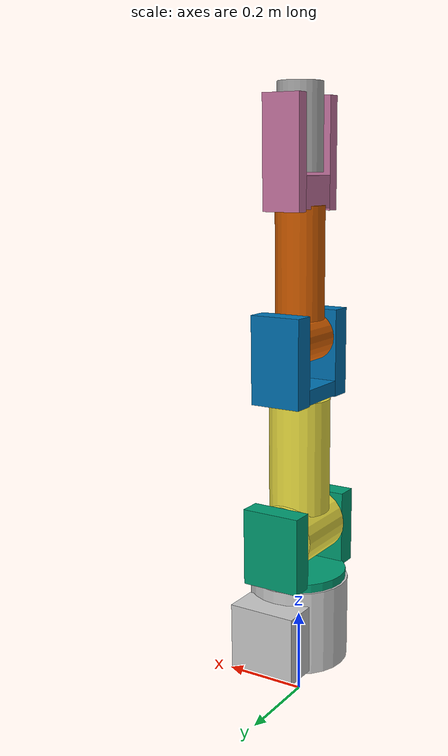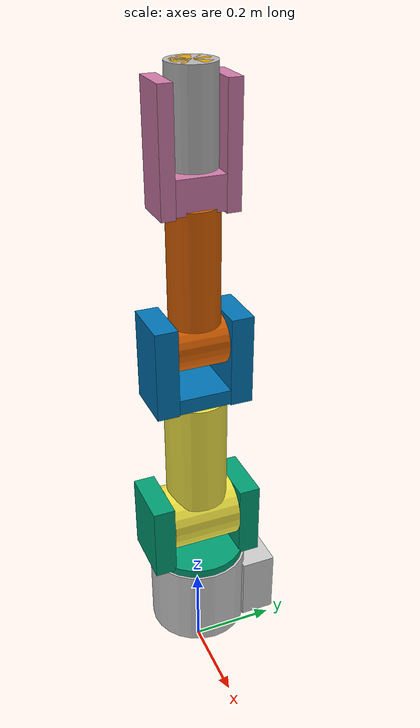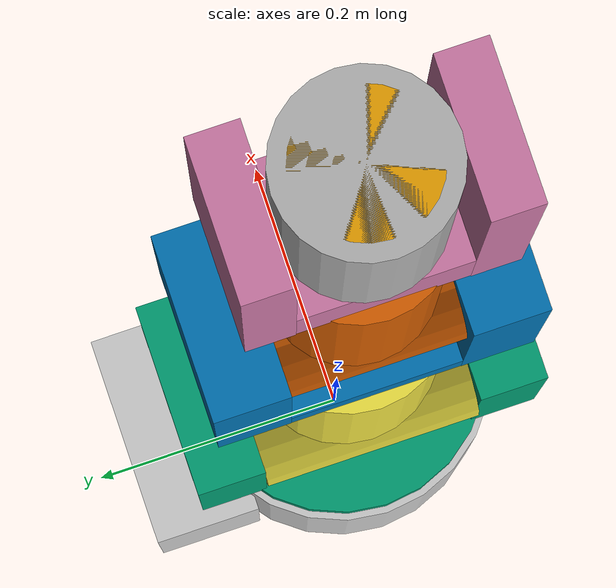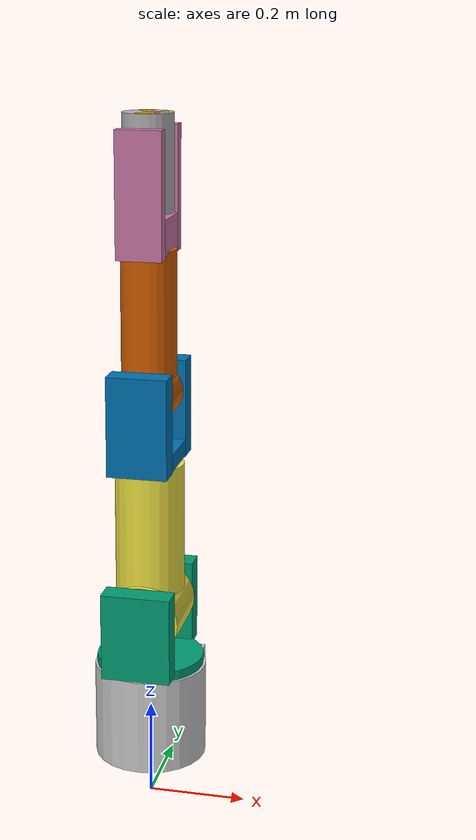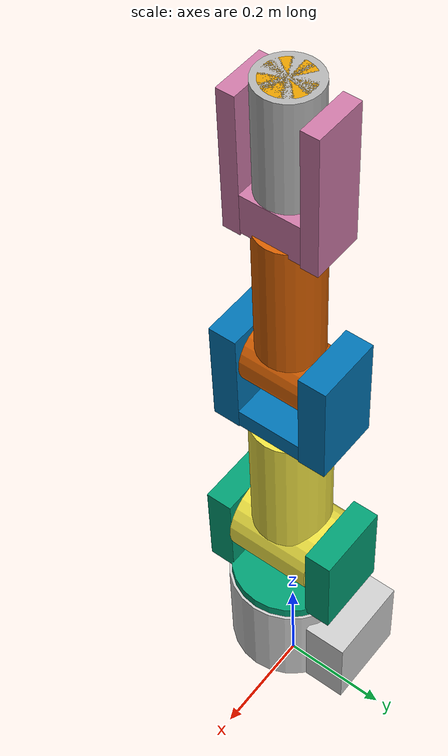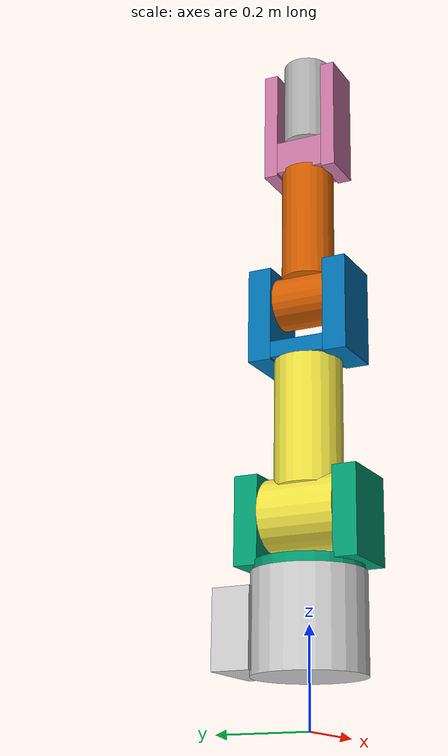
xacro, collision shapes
<?xml version="1.0"?>
<robot name="pa10-7c" xmlns:xacro="http://www.ros.org/wiki/xacro" >

  <xacro:include filename="$(find pa10_7c_description)/urdf/pa10-7c.urdf.xacro"/>
  <xacro:include filename="$(find pa10_7c_description)/urdf/pa10_ros_controller_manager.xacro"/>

  <link name="world" />

  <joint name="world_pa10_arm_base_joint" type="fixed">
    <origin xyz="0 0 0.1" rpy="0 0 0"/>
    <parent link="world"/>
    <child link="arm_base_link"/>
  </joint>

  <xacro:pa10_7c_arm name="" />
  <xacro:pa10_gazebo_ros_controller_manager namespace="" />

</robot>

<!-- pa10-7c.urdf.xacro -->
<robot name="PA10_7c"
		 xmlns:xacro="http://www.ros.org/wiki/xacro"
		 xmlns:sensor="http://playerstage.sourceforge.net/gazebo/xmlschema/#sensor"
		 xmlns:controller="http://playerstage.sourceforge.net/gazebo/xmlschema/#controller"
       xmlns:interface="http://playerstage.sourceforge.net/gazebo/xmlschema/#interface">

  <xacro:macro name="pa10_7c_arm" params="name kinematic:=false">
  <link name="${name}arm_base_link">
    <visual>
      <origin xyz="0 0 0" rpy="0 0 0"/>
      <geometry>
        <mesh filename="package://pa10_7c_description/meshes/link0_mesh.dae" scale="1 1 1" />
      </geometry>
    </visual>
    <collision>
      <origin xyz="0 0 0.100" rpy="0 0 0"/>
      <geometry>
        <cylinder length="0.200" radius="0.115"/>
      </geometry>
    </collision>
    <collision>
      <origin xyz="0 0.130 0.090" rpy="0 0 0"/>
      <geometry>
        <box size="0.160 0.080 0.160" />
      </geometry>
    </collision>
    <inertial>
      <mass value="6.88" />
      <origin xyz="0 0 0.091" rpy="0 0 0"/>
      <inertia ixx="0.043" ixy="0" ixz="0" iyy="0.043" iyz="0" izz="0.0416"/>
    </inertial>
  </link>
  <gazebo reference="${name}arm_base_link">
    <material>LightGrey</material>
    <selfCollide>false</selfCollide>
    <kinematic>${kinematic}</kinematic>
  </gazebo>
  <link name="${name}arm_1_link">
    <visual>
      <origin xyz="0 0 0" rpy="0 0 0"/>
      <geometry>
        <mesh filename="package://pa10_7c_description/meshes/link1_mesh.dae" scale="1 1 1" />
      </geometry>
    </visual>
    <collision>
      <origin xyz="0 0 0.210" rpy="0 0 0"/>
      <geometry>
        <cylinder length="0.020" radius="0.110"/>
      </geometry>
    </collision>
    <collision>
      <origin xyz="0.0 0.105 0.3" rpy="0 0 0"/>
      <geometry>
		  <box size="0.140 0.05 0.180" />
      </geometry>
    </collision>
    <collision>
      <origin xyz="0.0 -0.105 0.3" rpy="0 0 0"/>
      <geometry>
		  <box size="0.140 0.05 0.180" />
      </geometry>
    </collision>
    <inertial>
      <mass value="7.33" />
      <origin xyz="0 0 0.160" rpy="0 0 0"/>
      <inertia ixx="0.11" ixy="0" ixz="0" iyy="0.11" iyz="0" izz="0.037"/>
    </inertial>
  </link>
  <gazebo reference="${name}arm_1_link">
    <kinematic>${kinematic}</kinematic>
  </gazebo>
  <link name="${name}arm_2_link">
    <visual>
      <origin xyz="0 0 -0.317" rpy="0 0 0"/>
      <geometry>
        <mesh filename="package://pa10_7c_description/meshes/link2_mesh.dae" scale="1 1 1" />
      </geometry>
    </visual>
    <collision>
      <origin xyz="0 0 0.183" rpy="0 0 0"/>
      <geometry>
        <cylinder length="0.266" radius="0.07"/>
      </geometry>
    </collision>
    <collision>
      <origin xyz="0 0 0.0" rpy="1.5708 0 0"/>
      <geometry>
        <cylinder length="0.160" radius="0.075"/>
      </geometry>
    </collision>
    <inertial>
      <mass value="10.76" />
      <origin xyz="0 0 0.063" rpy="0 0 0"/>
      <inertia ixx="0.168" ixy="0" ixz="0" iyy="0.168" iyz="0" izz="0.026"/>
    </inertial>
  </link>
  <gazebo reference="${name}arm_2_link">
    <kinematic>${kinematic}</kinematic>
  </gazebo>
  <link name="${name}arm_3_link">
    <visual>
      <origin xyz="0 0 -0.317" rpy="0 0 0"/>
      <geometry>
        <mesh filename="package://pa10_7c_description/meshes/link3_mesh.dae" scale="1 1 1" />
      </geometry>
    </visual>
    <collision>
      <origin xyz="0 0 0.333" rpy="0 0 0"/>
      <geometry>
         <box size="0.120 0.116 0.034" />
      </geometry>
    </collision>
    <collision>
      <origin xyz="0.0 0.083 0.413" rpy="0 0 0"/>
      <geometry>
		  <box size="0.120 0.05 0.20" />
      </geometry>
    </collision>
    <collision>
      <origin xyz="0.0 -0.083 0.413" rpy="0 0 0"/>
      <geometry>
		  <box size="0.120 0.05 0.20" />
      </geometry>
    </collision>
    <inertial>
      <mass value="2.97" />
      <origin xyz="0 0 0.346" rpy="0 0 0"/>
      <inertia ixx="0.028" ixy="0" ixz="0" iyy="0.028" iyz="0" izz="0.073"/>
    </inertial>
  </link>
  <gazebo reference="${name}arm_3_link">
    <kinematic>${kinematic}</kinematic>
  </gazebo>
  <link name="${name}arm_4_link">
    <visual>
      <origin xyz="0 0 -0.767" rpy="0 0 0"/>
      <geometry>
        <mesh filename="package://pa10_7c_description/meshes/link4_mesh.dae" scale="1 1 1" />
      </geometry>
    </visual>
    <collision>
      <origin xyz="0 0 0.170" rpy="0 0 0"/>
      <geometry>
        <cylinder length="0.248" radius="0.055"/>
      </geometry>
    </collision>
    <collision>
      <origin xyz="0 0 0.0" rpy="1.5708 0 0"/>
      <geometry>
        <cylinder length="0.116" radius="0.055"/>
      </geometry>
    </collision>
    <inertial>
      <mass value="4.86" />
      <origin xyz="0 0 0.0485" rpy="0 0 0"/>
      <inertia ixx="0.0055" ixy="0" ixz="0" iyy="0.0055" iyz="0" izz="0.0073"/>
    </inertial>
  </link>
  <gazebo reference="${name}arm_4_link">
    <kinematic>${kinematic}</kinematic>
  </gazebo>
  <link name="${name}arm_5_link">
    <visual>
      <origin xyz="0 0 -0.767" rpy="0 0 0"/>
      <geometry>
        <mesh filename="package://pa10_7c_description/meshes/link5_mesh.dae" scale="1 1 1" />
      </geometry>
    </visual>
    <collision>
      <origin xyz="0 0 0.322" rpy="0 0 0"/>
      <geometry>
         <box size="0.09 0.102 0.070" />
      </geometry>
    </collision>
    <collision>
      <origin xyz="0.0 0.066 0.403" rpy="0 0 0"/>
      <geometry>
		  <box size="0.09 0.03 0.242" />
      </geometry>
    </collision>
    <collision>
      <origin xyz="0.0 -0.066 0.403" rpy="0 0 0"/>
      <geometry>
		  <box size="0.09 0.03 0.242" />
      </geometry>
    </collision>
    <inertial>
      <mass value="3.08" />
      <origin xyz="0 0 0.368" rpy="0 0 0"/>
      <inertia ixx="0.02" ixy="0" ixz="0" iyy="0.02" iyz="0" izz="0.0046"/>
    </inertial>
  </link>
  <gazebo reference="${name}arm_5_link">
    <kinematic>${kinematic}</kinematic>
  </gazebo>
  <link name="${name}arm_6_link">
    <visual>
      <origin xyz="0 0 -1.247" rpy="0 0 0"/>
      <geometry>
        <mesh filename="package://pa10_7c_description/meshes/link6_mesh.dae" scale="1 1 1" />
      </geometry>
    </visual>
    <collision>
      <origin xyz="0 0 -0.023" rpy="0 0 0"/>
      <geometry>
        <cylinder length="0.186" radius="0.05"/>
      </geometry>
    </collision>
    <inertial>
      <mass value="3.00" />
      <origin xyz="0 0 -0.042" rpy="0 0 0"/>
      <inertia ixx="0.011" ixy="0" ixz="0" iyy="0.011" iyz="0" izz="0.0038"/>
    </inertial>
  </link>
  <gazebo reference="${name}arm_6_link">
    <kinematic>${kinematic}</kinematic>
  </gazebo>
  <link name="${name}arm_7_link">
    <visual>
      <origin xyz="0 0 0" rpy="0 0 0"/>
      <geometry>
        <mesh filename="package://pa10_7c_description/meshes/link7_mesh.dae" scale="1 1 1" />
      </geometry>
    </visual>
    <collision>
      <origin xyz="0 0 -0.01" rpy="0 0 0"/>
      <geometry>
        <cylinder length="0.02" radius="0.04"/>
      </geometry>
    </collision>
    <inertial>
      <mass value="0.12" />
      <origin xyz="0 0 -0.048" rpy="0 0 0"/>
      <inertia ixx="0.000052" ixy="0.0" ixz="0" iyy="0.000052" iyz="0" izz="0.000096"/>
    </inertial>
  </link>
  <gazebo reference="${name}arm_7_link">
    <kinematic>${kinematic}</kinematic>
  </gazebo>
  <joint name="${name}S1" type="revolute">
    <parent link="${name}arm_base_link"/>
    <child  link="${name}arm_1_link"/>
    <origin xyz="0 0 0" rpy="0 0 0 "/>
    <axis   xyz="0 0 1"/>
    <limit lower="${-177/180*pi}" upper="${177/180*pi}" effort="100" velocity="1" />
    <dynamics damping="0.2" friction="0" />
  </joint>
  <gazebo reference="${name}S1">
    <provideFeedback>1</provideFeedback>
    <implicitSpringDamper>1</implicitSpringDamper>
  </gazebo>
  <transmission name="${name}S1_transmission">
    <type>transmission_interface/SimpleTransmission</type>
    <actuator name="${name}S1_actuator">
      <mechanicalReduction>1</mechanicalReduction>
    </actuator>
    <joint name="${name}S1">
      <hardwareInterface>PositionJointInterface</hardwareInterface>
    </joint>
  </transmission>

  <joint name="${name}S2" type="revolute">
    <parent link="${name}arm_1_link"/>
    <child  link="${name}arm_2_link"/>
    <origin xyz="0 0 0.317" rpy="0 0 0 "/>
    <axis   xyz="0 1 0"/>
    <limit lower="${-94/180*pi}" upper="${+94/180*pi}" effort="100" velocity="1" />
    <dynamics damping="0.2" friction="0" />
  </joint>
  <gazebo reference="${name}S2">
    <provideFeedback>1</provideFeedback>
    <implicitSpringDamper>1</implicitSpringDamper>
  </gazebo>
  <transmission name="${name}S2_transmission">
    <type>transmission_interface/SimpleTransmission</type>
    <actuator name="${name}S2_actuator">
      <mechanicalReduction>1</mechanicalReduction>
    </actuator>
    <joint name="${name}S2">
      <hardwareInterface>PositionJointInterface</hardwareInterface>
    </joint>
  </transmission>

  <joint name="${name}S3" type="revolute">
    <parent link="${name}arm_2_link"/>
    <child  link="${name}arm_3_link"/>
    <origin xyz="0 0 0" rpy="0 0 0 "/>
    <axis   xyz="0 0 1"/>
    <limit lower="${-174/180*pi}" upper="${174/180*pi}" effort="100" velocity="2" />
    <dynamics damping="0.2" friction="0" />
  </joint>
  <gazebo reference="${name}S3">
    <provideFeedback>1</provideFeedback>
    <implicitSpringDamper>1</implicitSpringDamper>
  </gazebo>
  <transmission name="${name}S3_transmission">
    <type>transmission_interface/SimpleTransmission</type>
    <actuator name="${name}S3_actuator">
      <mechanicalReduction>1</mechanicalReduction>
    </actuator>
    <joint name="${name}S3">
      <hardwareInterface>PositionJointInterface</hardwareInterface>
    </joint>
  </transmission>

  <joint name="${name}E1" type="revolute">
    <parent link="${name}arm_3_link"/>
    <child  link="${name}arm_4_link"/>
    <origin xyz="0 0 0.45" rpy="0 0 0 "/>
    <axis   xyz="0 1 0"/>
    <limit lower="${-137/180*pi}" upper="${137/180*pi}" effort="100" velocity="2" />
    <dynamics damping="0.2" friction="0" />
  </joint>
  <gazebo reference="${name}E1">
    <provideFeedback>1</provideFeedback>
    <implicitSpringDamper>1</implicitSpringDamper>
  </gazebo>
  <transmission name="${name}E1_transmission">
    <type>transmission_interface/SimpleTransmission</type>
    <actuator name="${name}E1_actuator">
      <mechanicalReduction>1</mechanicalReduction>
    </actuator>
    <joint name="${name}E1">
      <hardwareInterface>PositionJointInterface</hardwareInterface>
    </joint>
  </transmission>

  <joint name="${name}E2" type="revolute">
    <parent link="${name}arm_4_link"/>
    <child  link="${name}arm_5_link"/>
    <origin xyz="0 0 0" rpy="0 0 0 "/>
    <axis   xyz="0 0 1"/>
    <limit lower="${-255/180*pi}" upper="${255/180*pi}" effort="100" velocity="6.28" />
    <dynamics damping="0.2" friction="0" />
  </joint>
  <gazebo reference="${name}E2">
    <provideFeedback>1</provideFeedback>
    <implicitSpringDamper>1</implicitSpringDamper>
  </gazebo>
  <transmission name="${name}E2_transmission">
    <type>transmission_interface/SimpleTransmission</type>
    <actuator name="${name}E2_actuator">
      <mechanicalReduction>1</mechanicalReduction>
    </actuator>
    <joint name="${name}E2">
      <hardwareInterface>PositionJointInterface</hardwareInterface>
    </joint>
  </transmission>

  <joint name="${name}W1" type="revolute">
    <parent link="${name}arm_5_link"/>
    <child  link="${name}arm_6_link"/>
    <origin xyz="0 0 0.480" rpy="0 0 0 "/>
    <axis   xyz="0 1 0"/>
    <limit lower="${-165/180*pi}" upper="${165/180*pi}" effort="100" velocity="6.28" />
    <dynamics damping="0.2" friction="0" />
  </joint>
  <gazebo reference="${name}W1">
    <provideFeedback>1</provideFeedback>
    <implicitSpringDamper>1</implicitSpringDamper>
  </gazebo>
  <transmission name="${name}W1_transmission">
    <type>transmission_interface/SimpleTransmission</type>
    <actuator name="${name}W1_actuator">
      <mechanicalReduction>1</mechanicalReduction>
    </actuator>
    <joint name="${name}W1">
      <hardwareInterface>PositionJointInterface</hardwareInterface>
    </joint>
  </transmission>

  <joint name="${name}W2" type="revolute">
    <parent link="${name}arm_6_link"/>
    <child  link="${name}arm_7_link"/>
    <origin xyz="0 0 0.07" rpy="0 0 0 "/>
    <axis   xyz="0 0 1"/>
    <limit lower="${-255/180*pi}" upper="${255/180*pi}" effort="100" velocity="6.28" />
    <dynamics damping="0.2" friction="0" />
  </joint>
  <gazebo reference="${name}W2">
    <provideFeedback>1</provideFeedback>
    <implicitSpringDamper>1</implicitSpringDamper>
  </gazebo>
  <transmission name="${name}W2_transmission">
    <type>transmission_interface/SimpleTransmission</type>
    <actuator name="${name}W2_actuator">
      <mechanicalReduction>1</mechanicalReduction>
    </actuator>
    <joint name="${name}W2">
      <hardwareInterface>PositionJointInterface</hardwareInterface>
    </joint>
  </transmission>

  <joint name="${name}arm_hand_fixed_joint" type="fixed">
	 <parent link="${name}arm_7_link"/>
	 <child link="${name}tool_mount"/>
  </joint>

  <link name="${name}tool_mount" />
   <gazebo reference="${name}tool_mount">
    <kinematic>${kinematic}</kinematic>
  </gazebo>
  </xacro:macro>
</robot>
